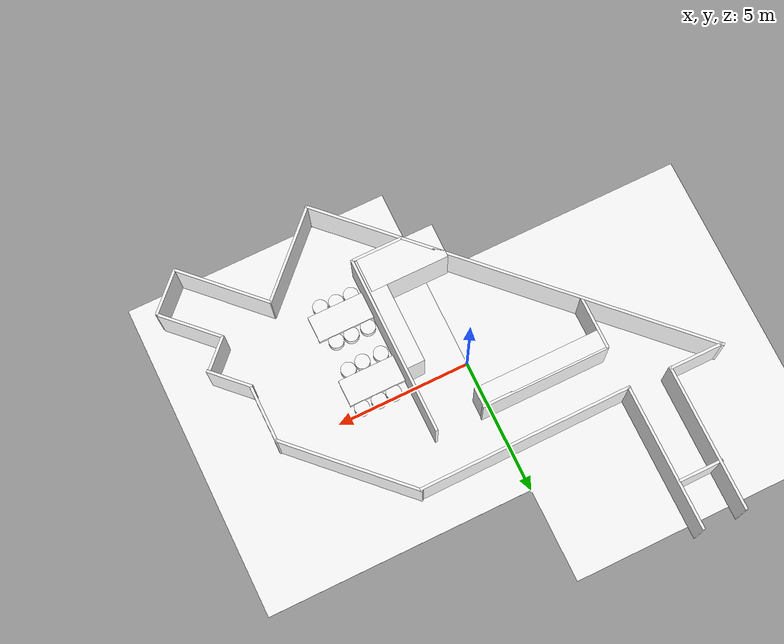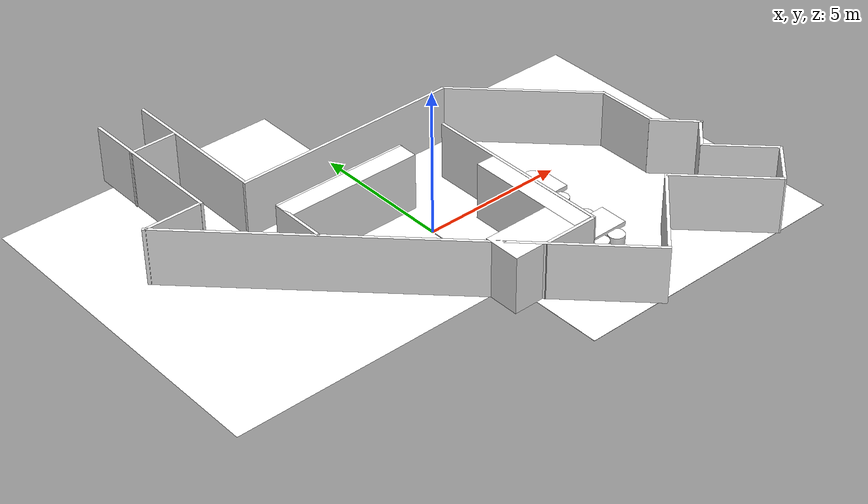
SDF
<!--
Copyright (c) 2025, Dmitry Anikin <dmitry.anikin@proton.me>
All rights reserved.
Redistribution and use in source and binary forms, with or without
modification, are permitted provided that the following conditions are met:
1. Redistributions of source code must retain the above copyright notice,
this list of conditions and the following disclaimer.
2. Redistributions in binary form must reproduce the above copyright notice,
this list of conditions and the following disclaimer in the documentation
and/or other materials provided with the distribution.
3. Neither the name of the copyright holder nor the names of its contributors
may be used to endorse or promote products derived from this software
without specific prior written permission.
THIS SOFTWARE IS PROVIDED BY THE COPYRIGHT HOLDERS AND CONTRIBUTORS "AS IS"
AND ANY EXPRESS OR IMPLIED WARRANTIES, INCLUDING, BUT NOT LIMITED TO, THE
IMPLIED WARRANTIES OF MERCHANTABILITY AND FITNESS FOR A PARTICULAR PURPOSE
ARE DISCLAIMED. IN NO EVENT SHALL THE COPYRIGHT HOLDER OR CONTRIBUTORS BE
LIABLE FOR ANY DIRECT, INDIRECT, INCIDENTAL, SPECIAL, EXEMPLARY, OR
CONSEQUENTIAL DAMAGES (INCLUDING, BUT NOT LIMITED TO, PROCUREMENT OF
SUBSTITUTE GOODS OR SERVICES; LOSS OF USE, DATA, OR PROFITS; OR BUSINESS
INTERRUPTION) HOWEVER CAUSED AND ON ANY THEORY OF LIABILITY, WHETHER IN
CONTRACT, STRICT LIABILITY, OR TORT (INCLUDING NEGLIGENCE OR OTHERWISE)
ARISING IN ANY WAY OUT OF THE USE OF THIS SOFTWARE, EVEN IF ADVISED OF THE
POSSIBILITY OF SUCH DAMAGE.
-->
<?xml version='1.0' encoding='ASCII'?>
<sdf version='1.7'>
  <world name='autonav_room'>
    <physics type="ode">
      <max_step_size>0.003</max_step_size>
      <real_time_factor>1.0</real_time_factor>
    </physics>
    <plugin name='ignition::gazebo::systems::Physics' filename='libignition-gazebo-physics-system.so'/>
    <plugin name='ignition::gazebo::systems::UserCommands' filename='libignition-gazebo-user-commands-system.so'/>
    <plugin name='ignition::gazebo::systems::SceneBroadcaster' filename='libignition-gazebo-scene-broadcaster-system.so'/>
    <plugin name="ignition::gazebo::systems::Sensors" filename="libignition-gazebo-sensors-system.so">
      <render_engine>ogre2</render_engine>
    </plugin>
    <plugin name="ignition::gazebo::systems::Imu" filename="libignition-gazebo-imu-system.so"/>
    <plugin name="ignition::gazebo::systems::NavSat" filename="libignition-gazebo-navsat-system.so"/>

    <scene>
      <ambient>1 1 1 1</ambient>
      <background>0.3 0.7 0.9 1</background>
      <shadows>0</shadows>
      <grid>false</grid>
    </scene>

    <spherical_coordinates>
      <surface_model>EARTH_WGS84</surface_model>
      <world_frame_orientation>ENU</world_frame_orientation>
      <latitude_deg>-22.986687</latitude_deg>
      <longitude_deg>-43.202501</longitude_deg>
      <elevation>0</elevation>
      <heading_deg>0</heading_deg>
    </spherical_coordinates>

    <light name='directionallight' type='directional'>
      <pose>-0.11616 -1.32396 2 0 -0 0</pose>
      <cast_shadows>false</cast_shadows>
      <intensity>1</intensity>
      <direction>0 0 -1</direction>
      <diffuse>0.8 0.8 0.8 1</diffuse>
      <specular>0.2 0.2 0.2 1</specular>
      <attenuation>
        <range>1000</range>
        <linear>0.01</linear>
        <constant>0.90000000000000002</constant>
        <quadratic>0.001</quadratic>
      </attenuation>
      <spot>
        <inner_angle>0</inner_angle>
        <outer_angle>0</outer_angle>
        <falloff>0</falloff>
      </spot>
    </light>

    <include>
      <uri>
        model://room
      </uri>
      <pose> 0 0 1 0 0 0</pose>
    </include>

    <include>
      <uri>
        model://floor
      </uri>
      <pose> -5 2.5 0 0 0 0</pose>
    </include>

    <include>
      <uri>
        model://floor
      </uri>
      <pose> 5 -1 0 0 0 0</pose>
      <name>floor_1</name>
    </include>

  </world>
</sdf>
